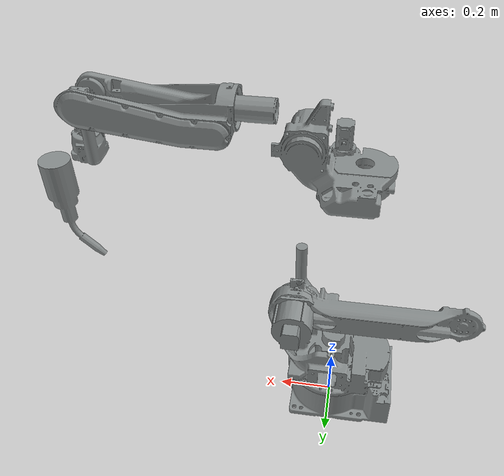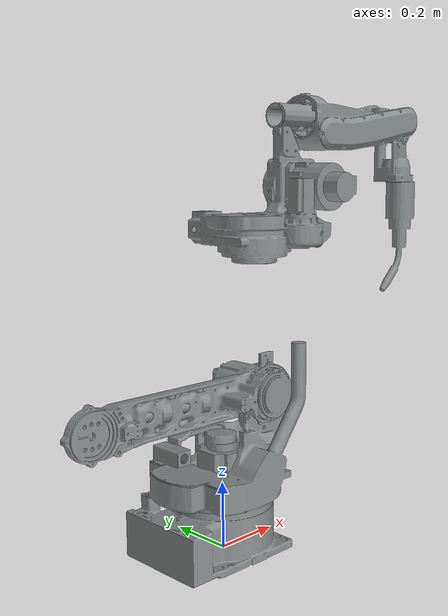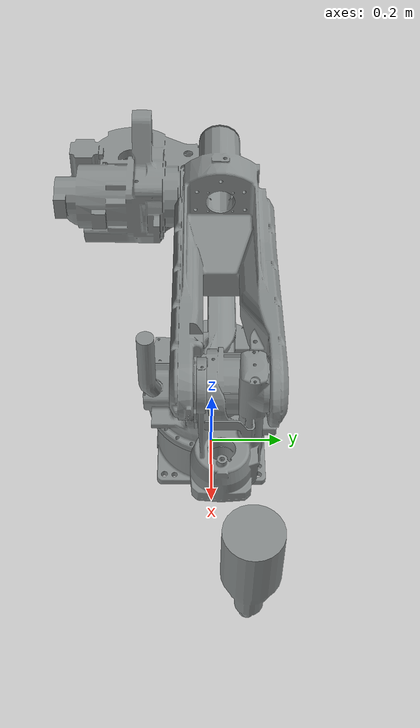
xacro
<?xml version="1.0"?>
<robot name="ma1400" xmlns:xacro="http://www.ros.org/wiki/xacro">
  <!-- Constants for robot dimensions -->
  <xacro:property name="M_PI" value="3.1415926535897931"/>
  <!-- Import all Gazebo-customization elements, including Gazebo colors -->
  <xacro:include filename="$(find ma1400_sim)/urdf/ma1400/ma1400.gazebo.xacro" />
  <!-- Import trasnmission macro -->
  <xacro:include filename="$(find ma1400_sim)/urdf/ma1400/ma1400.transmission.xacro" />

  <!-- Parameters for each joint and link -->
  <!-- joint: joint_base = world -> base_link -->
  <property name="base_name"       value="base" />
  <property name="base_type"       value="revolute" />
  <property name="base_origin_xyz" value="0 0 0" />
  <property name="base_origin_rpy" value="0 0 0" />
  <property name="base_parent"     value="world" />
  <property name="base_child"      value="base_link" />
  <property name="base_axis_xyz"   value="0 0 1" />
  <property name="base_lower"      value="0" />
  <property name="base_upper"      value="0" />
  <property name="base_effort"     value="100" />
  <property name="base_velocity"   value="0" />
  <property name="base_damping"    value="0.7" />

  <!-- link: base_link -->
  <property name="base_xyz"  value="-0.048249 0.0031755 0.057933" />
  <property name="base_rpy"  value="0 0 0"      />
  <property name="base_mass" value="20.675"     />
  <property name="base_ixx"  value="0.23299" />
  <property name="base_ixy"  value="0.010295" />
  <property name="base_ixz"  value="0.026547" />
  <property name="base_iyy"  value="0.33925" />
  <property name="base_iyz"  value="-0.0069338" />
  <property name="base_izz"  value="0.47449" />

  <!-- joint: joint_s = base_link -> s_link -->
  <property name="s_name"       value="s" />
  <property name="s_type"       value="revolute" />
  <property name="s_origin_xyz" value="0 0 0.0795" />
  <property name="s_origin_rpy" value="0 ${-M_PI/2} 0" />
  <property name="s_parent"     value="base_link" />
  <property name="s_child"      value="s_link" />
  <property name="s_axis_xyz"   value="1 0 0" />
  <property name="s_lower"      value="${-170*M_PI/180}" />
  <property name="s_upper"      value="${170*M_PI/180}" />
  <property name="s_effort"     value="100" />
  <property name="s_velocity"   value="${220*M_PI/180}" />
  <property name="s_damping"    value="0.7" />

  <!-- link: s_link -->
  <property name="s_xyz"  value="0.23291 0.00363 -0.063572" />
  <property name="s_rpy"  value="0 0 0" />
  <property name="s_mass" value="88.83" />
  <property name="s_ixx"  value="1.4964" />
  <property name="s_ixy"  value="-0.058219" />
  <property name="s_ixz"  value="0.70048" />
  <property name="s_iyy"  value="2.1203" />
  <property name="s_iyz"  value="0.050416" />
  <property name="s_izz"  value="1.9586" />

  <!-- joint: joint_l = s_link -> l_link -->
  <property name="l_name"       value="l" />
  <property name="l_type"       value="revolute" />
  <property name="l_origin_xyz" value="0.3705 -0.0655 -0.15" />
  <property name="l_origin_rpy" value="${M_PI/2} 0 ${M_PI/2}" />
  <property name="l_parent"     value="s_link" />
  <property name="l_child"      value="l_link" />
  <property name="l_axis_xyz"   value="-1 0 0" />
  <property name="l_lower"      value="${-90*M_PI/180}" />
  <property name="l_upper"      value="${170*M_PI/180}" />
  <property name="l_effort"     value="100" />
  <property name="l_velocity"   value="${200*M_PI/180}" />
  <property name="l_damping"    value="1.7" />

  <!-- link: l_link -->
  <property name="l_xyz"  value="-0.0695 -8.5276E-05 0.26439" />
  <property name="l_rpy"  value="0 0 0" />
  <property name="l_mass" value="28.317" />
  <property name="l_ixx"  value="1.1928" />
  <property name="l_ixy"  value="0.00030289" />
  <property name="l_ixz"  value="0.044292" />
  <property name="l_iyy"  value="1.1806" />
  <property name="l_iyz"  value="0.00063599" />
  <property name="l_izz"  value="0.066034" />

  <!-- joint: joint_u = l_link -> u_link -->
  <property name="u_name"       value="u" />
  <property name="u_type"       value="revolute" />
  <property name="u_origin_xyz" value="-0.0105 0 0.614" />
  <property name="u_origin_rpy" value="8.4471E-16 0 ${M_PI}" />
  <property name="u_parent"     value="l_link" />
  <property name="u_child"      value="u_link" />
  <property name="u_axis_xyz"   value="1 0 0" />
  <property name="u_lower"      value="${-175*M_PI/180}" />
  <property name="u_upper"      value="${190*M_PI/180}" />
  <property name="u_effort"     value="100" />
  <property name="u_velocity"   value="${220*M_PI/180}" />
  <property name="u_damping"    value="1.7" />

  <!-- link: u_link -->
  <property name="u_xyz"  value="-0.072277 0.050702 0.069002" />
  <property name="u_rpy"  value="0 0 0" />
  <property name="u_mass" value="45.493" />
  <property name="u_ixx"  value="0.62809" />
  <property name="u_ixy"  value="-0.021439" />
  <property name="u_ixz"  value="-0.022058" />
  <property name="u_iyy"  value="0.64311" />
  <property name="u_iyz"  value="-0.19366" />
  <property name="u_izz"  value="0.4741" />

  <!-- joint: joint_r = u_link -> r_link -->
  <property name="r_name"       value="r" />
  <property name="r_type"       value="revolute" />
  <property name="r_origin_xyz" value="-0.075 0.069 0.2" />
  <property name="r_origin_rpy" value="0 0 ${M_PI/2}" />
  <property name="r_parent"     value="u_link" />
  <property name="r_child"      value="r_link" />
  <property name="r_axis_xyz"   value="1 0 0" />
  <property name="r_lower"      value="${-150*M_PI/180}" />
  <property name="r_upper"      value="${150*M_PI/180}" />
  <property name="r_effort"     value="14" />
  <property name="r_velocity"   value="${185*M_PI/180}" />
  <property name="r_damping"    value="1.7" />

  <!-- link: r_link -->
  <property name="r_xyz"  value="0.27435 0.0044655 -0.016291" />
  <property name="r_rpy"  value="0 0 0" />
  <property name="r_mass" value="12.48" />
  <property name="r_ixx"  value="0.052841" />
  <property name="r_ixy"  value="-0.0015314" />
  <property name="r_ixz"  value="0.0065365" />
  <property name="r_iyy"  value="0.35213" />
  <property name="r_iyz"  value="0.00071105" />
  <property name="r_izz"  value="0.36301" />

  <!-- joint: joint_b = r_link -> b_link -->
  <property name="b_name"       value="b" />
  <property name="b_type"       value="revolute" />
  <property name="b_origin_xyz" value="0.571 0.07 0" />
  <property name="b_origin_rpy" value="${M_PI} 0 ${-M_PI/2}" />
  <property name="b_parent"     value="r_link" />
  <property name="b_child"      value="b_link" />
  <property name="b_axis_xyz"   value="-1 0 0" />
  <property name="b_lower"      value="${-45*M_PI/180}" />
  <property name="b_upper"      value="${180*M_PI/180}" />
  <property name="b_effort"     value="14" />
  <property name="b_velocity"   value="${164*M_PI/180}" />
  <property name="b_damping"    value="1.7" />

  <!-- link: b_link -->
  <property name="b_xyz"  value="0.056213 -0.012763 0.092186" />
  <property name="b_rpy"  value="0 0 0" />
  <property name="b_mass" value="3.7633" />
  <property name="b_ixx"  value="0.022596" />
  <property name="b_ixy"  value="0.00053717" />
  <property name="b_ixz"  value="-0.0014476" />
  <property name="b_iyy"  value="0.02438" />
  <property name="b_iyz"  value="0.0028381" />
  <property name="b_izz"  value="0.0080793" />

  <!-- joint: joint_t = b_link -> t_link -->
  <property name="t_name"       value="t" />
  <property name="t_type"       value="revolute" />
  <property name="t_origin_xyz" value="0.07 -0.03 0.2" />
  <property name="t_origin_rpy" value="${M_PI/2} ${-M_PI/2} 0" />
  <property name="t_parent"     value="b_link" />
  <property name="t_child"      value="t_link" />
  <property name="t_axis_xyz"   value="-1 0 0" />
  <property name="t_lower"      value="${-200*M_PI/180}" />
  <property name="t_upper"      value="${200*M_PI/180}" />
  <property name="t_effort"     value="0.98" />
  <property name="t_velocity"   value="${610*M_PI/180}" />
  <property name="t_damping"    value="0.7" />

  <!-- link: t_link -->
  <property name="t_xyz"  value="-0.032449 -1.0236E-05 -1.6467E-05" />
  <property name="t_rpy"  value="0 0 0" />
  <property name="t_mass" value="1.2192" />
  <property name="t_ixx"  value="0.0011364" />
  <property name="t_ixy"  value="-4.7514E-07" />
  <property name="t_ixz"  value="1.1667E-06" />
  <property name="t_iyy"  value="0.0010441" />
  <property name="t_iyz"  value="2.5103E-06" />
  <property name="t_izz"  value="0.0010384" />

  <!-- joint: joint_tip = t_link -> tip_link -->
  <property name="tip_name"       value="tip" />
  <property name="tip_type"       value="revolute" />
  <property name="tip_origin_xyz" value="0 0 0" />
  <property name="tip_origin_rpy" value="0 0 0" />
  <property name="tip_parent"     value="t_link" />
  <property name="tip_child"      value="tip_link" />
  <property name="tip_axis_xyz"   value="1 0 0" />
  <property name="tip_lower"      value="0" />
  <property name="tip_upper"      value="0" />
  <property name="tip_effort"     value="0" />
  <property name="tip_velocity"   value="0" />
  <property name="tip_damping"    value="0.7" />

  <!-- link: tip_link -->
  <property name="tip_xyz"  value="0.095555 0.00012133 -0.0028627" />
  <property name="tip_rpy"  value="0 0 0" />
  <property name="tip_mass" value="4.7616" />
  <property name="tip_ixx"  value="0.007129" />
  <property name="tip_ixy"  value="3.0719E-05" />
  <property name="tip_ixz"  value="0.0036185" />
  <property name="tip_iyy"  value="0.038442" />
  <property name="tip_iyz"  value="1.6181E-05" />
  <property name="tip_izz"  value="0.037678" />

  <!-- Macro which defines a joint, link, transmission, gazebo parameters -->
  <xacro:macro name="ma1400_link" params="name xyz rpy mass ixx ixy ixz iyy iyz izz type origin_xyz origin_rpy parent child axis_xyz lower upper effort velocity damping">
    <joint name="joint_${name}" type="${type}">
      <origin xyz="${origin_xyz}" rpy="${origin_rpy}" />
      <parent link="${parent}" />
      <child link="${child}" />
      <axis xyz="${axis_xyz}" />
      <limit lower="${lower}" upper="${upper}"
             effort="${effort}" velocity="${velocity}" />
      <dynamics damping="${damping}" />
    </joint>
    <link name="${name}_link">
      <inertial>
        <origin xyz="${xyz}" rpy="${rpy}" />
        <mass value="${mass}" />
        <inertia ixx="${ixx}" ixy="${ixy}" ixz="${ixz}"
                 iyy="${iyy}" iyz="${iyz}" izz="${izz}" />
      </inertial>
      <visual>
        <origin xyz="0 0 0" rpy="0 0 0" />
        <geometry>
          <mesh filename="package://ma1400_sim/meshes/ma1400/${name}_link.stl" />
        </geometry>
        <material name="Cast Carbon Steal">
          <color rgba="0.52941 0.54902 0.54902 1" />
        </material>
      </visual>
      <collision>
        <origin xyz="0 0 0" rpy="0 0 0" />
        <geometry>
          <mesh filename="package://ma1400_sim/meshes/ma1400/${name}_link_collision.stl" />
        </geometry>
      </collision>
    </link>
    <xacro:ma1400_transmission name="${name}" />
    <xacro:ma1400_gazebo name="${name}" />
  </xacro:macro>
  <!-- Macro which defines a joint, link, transmission, gazebo parameters -->

  <!-- Define all the joints and links -->
  <link name="world" />

  <!-- base_link -->
  <xacro:ma1400_link name="${base_name}" xyz="${base_xyz}" rpy="${base_rpy}"
                     mass="${base_mass}"
                     ixx="${base_ixx}" ixy="${base_ixy}" ixz="${base_ixz}"
                     iyy="${base_iyy}" iyz="${base_iyz}" izz="${base_izz}"
                     type="${base_type}"
                     origin_xyz="${base_origin_xyz}"
                     origin_rpy="${base_origin_rpy}"
                     parent="${base_parent}"
                     child="${base_child}"
                     axis_xyz="${base_axis_xyz}"
                     lower="${base_lower}"
                     upper="${base_upper}"
                     effort="${base_effort}"
                     velocity="${base_velocity}"
                     damping="${base_damping}" />

  <!-- s_link -->
  <xacro:ma1400_link name="${s_name}" xyz="${s_xyz}" rpy="${s_rpy}"
                     mass="${s_mass}"
                     ixx="${s_ixx}" ixy="${s_ixy}" ixz="${s_ixz}"
                     iyy="${s_iyy}" iyz="${s_iyz}" izz="${s_izz}"
                     type="${s_type}"
                     origin_xyz="${s_origin_xyz}"
                     origin_rpy="${s_origin_rpy}"
                     parent="${s_parent}"
                     child="${s_child}"
                     axis_xyz="${s_axis_xyz}"
                     lower="${s_lower}"
                     upper="${s_upper}"
                     effort="${s_effort}"
                     velocity="${s_velocity}"
                     damping="${s_damping}" />

  <!-- l_link -->
  <xacro:ma1400_link name="${l_name}" xyz="${l_xyz}" rpy="${l_rpy}"
                     mass="${l_mass}"
                     ixx="${l_ixx}" ixy="${l_ixy}" ixz="${l_ixz}"
                     iyy="${l_iyy}" iyz="${l_iyz}" izz="${l_izz}"
                     type="${l_type}"
                     origin_xyz="${l_origin_xyz}"
                     origin_rpy="${l_origin_rpy}"
                     parent="${l_parent}"
                     child="${l_child}"
                     axis_xyz="${l_axis_xyz}"
                     lower="${l_lower}"
                     upper="${l_upper}"
                     effort="${l_effort}"
                     velocity="${l_velocity}"
                     damping="${l_damping}" />

  <!-- u_link -->
  <xacro:ma1400_link name="${u_name}" xyz="${u_xyz}" rpy="${u_rpy}"
                     mass="${u_mass}"
                     ixx="${u_ixx}" ixy="${u_ixy}" ixz="${u_ixz}"
                     iyy="${u_iyy}" iyz="${u_iyz}" izz="${u_izz}"
                     type="${u_type}"
                     origin_xyz="${u_origin_xyz}"
                     origin_rpy="${u_origin_rpy}"
                     parent="${u_parent}"
                     child="${u_child}"
                     axis_xyz="${u_axis_xyz}"
                     lower="${u_lower}"
                     upper="${u_upper}"
                     effort="${u_effort}"
                     velocity="${u_velocity}"
                     damping="${u_damping}"/>

  <!-- r_link -->
  <xacro:ma1400_link name="${r_name}" xyz="${r_xyz}" rpy="${r_rpy}"
                     mass="${r_mass}"
                     ixx="${r_ixx}" ixy="${r_ixy}" ixz="${r_ixz}"
                     iyy="${r_iyy}" iyz="${r_iyz}" izz="${r_izz}"
                     type="${r_type}"
                     origin_xyz="${r_origin_xyz}"
                     origin_rpy="${r_origin_rpy}"
                     parent="${r_parent}"
                     child="${r_child}"
                     axis_xyz="${r_axis_xyz}"
                     lower="${r_lower}"
                     upper="${r_upper}"
                     effort="${r_effort}"
                     velocity="${r_velocity}"
                     damping="${r_damping}"/>

  <!-- b_link -->
  <xacro:ma1400_link name="${b_name}" xyz="${b_xyz}" rpy="${b_rpy}"
                     mass="${b_mass}"
                     ixx="${b_ixx}" ixy="${b_ixy}" ixz="${b_ixz}"
                     iyy="${b_iyy}" iyz="${b_iyz}" izz="${b_izz}"
                     type="${b_type}"
                     origin_xyz="${b_origin_xyz}"
                     origin_rpy="${b_origin_rpy}"
                     parent="${b_parent}"
                     child="${b_child}"
                     axis_xyz="${b_axis_xyz}"
                     lower="${b_lower}"
                     upper="${b_upper}"
                     effort="${b_effort}"
                     velocity="${b_velocity}"
                     damping="${b_damping}"/>

  <!-- t_link -->
  <xacro:ma1400_link name="${t_name}" xyz="${t_xyz}" rpy="${t_rpy}"
                     mass="${t_mass}"
                     ixx="${t_ixx}" ixy="${t_ixy}" ixz="${t_ixz}"
                     iyy="${t_iyy}" iyz="${t_iyz}" izz="${t_izz}"
                     type="${t_type}"
                     origin_xyz="${t_origin_xyz}"
                     origin_rpy="${t_origin_rpy}"
                     parent="${t_parent}"
                     child="${t_child}"
                     axis_xyz="${t_axis_xyz}"
                     lower="${t_lower}"
                     upper="${t_upper}"
                     effort="${t_effort}"
                     velocity="${t_velocity}"
                     damping="${t_damping}" />

  <!-- tip_link -->
  <xacro:ma1400_link name="${tip_name}" xyz="${tip_xyz}" rpy="${tip_rpy}"
                     mass="${tip_mass}"
                     ixx="${tip_ixx}" ixy="${tip_ixy}" ixz="${tip_ixz}"
                     iyy="${tip_iyy}" iyz="${tip_iyz}" izz="${tip_izz}"
                     type="${tip_type}"
                     origin_xyz="${tip_origin_xyz}"
                     origin_rpy="${tip_origin_rpy}"
                     parent="${tip_parent}"
                     child="${tip_child}"
                     axis_xyz="${tip_axis_xyz}"
                     lower="${tip_lower}"
                     upper="${tip_upper}"
                     effort="${tip_effort}"
                     velocity="${tip_velocity}"
                     damping="${tip_damping}" />

</robot>
